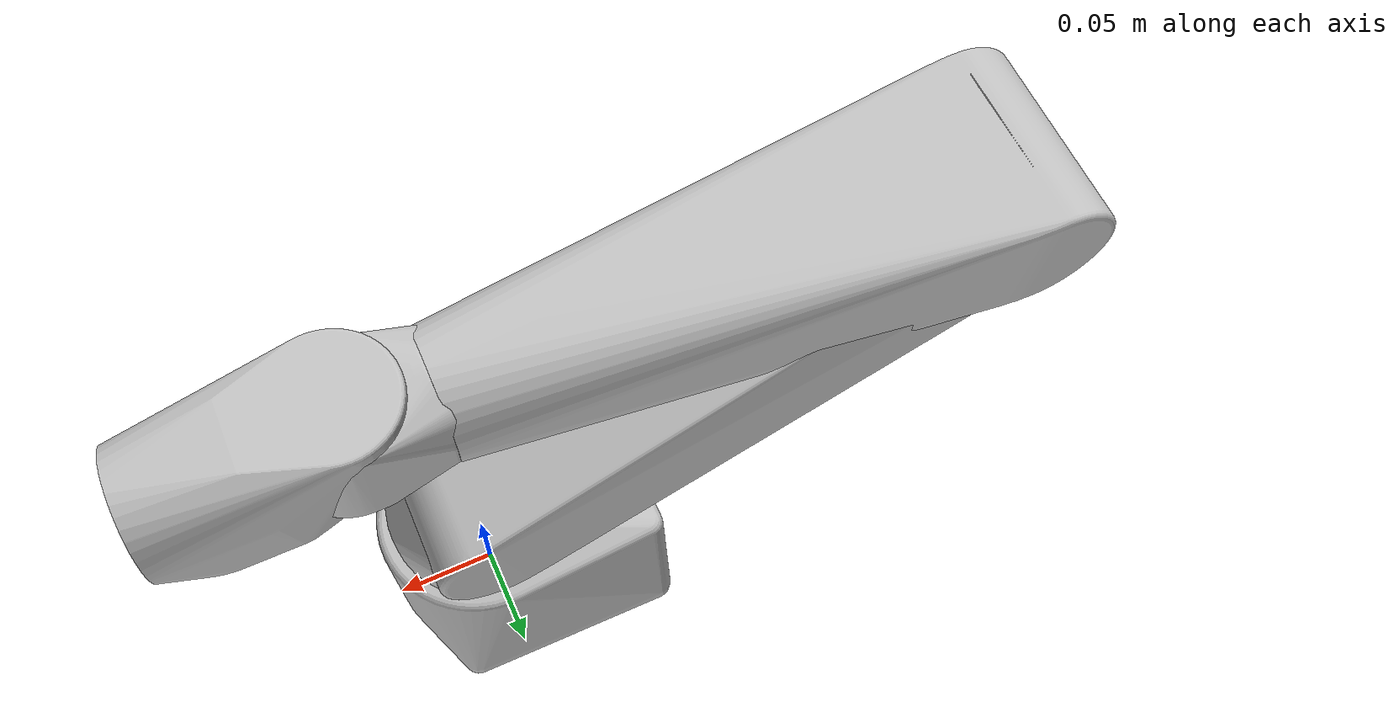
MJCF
<mujoco model="airbot">
  <include file="airbot_config.xml"/>
  <worldbody>
    <geom type="mesh" contype="0" conaffinity="0" group="1" density="0" rgba="0.75294 0.75294 0.75294 1" mesh="base_link"/>
    <body name="link1" pos="0 0 0.1117">
      <inertial pos="5.65823e-05 -0.00254686 -0.0260161" quat="0.425246 0.565393 0.444998 0.549067" mass="0.609" diaginertia="0.000363812 0.000296936 0.000260542"/>
      <joint name="joint1" pos="0 0 0" axis="0 0 1" range="-3.151 2.089" actuatorfrcrange="-12 12"/>
      <geom type="mesh" rgba="0.75294 0.75294 0.75294 1" mesh="link1"/>
      <body name="link2" quat="0.136004 0.135754 -0.693387 0.69447">
        <inertial pos="0.150315 0.00717305 0.00160325" quat="-0.0035835 0.712028 0.029484 0.701523" mass="0.902" diaginertia="0.00338951 0.00317972 0.000396151"/>
        <joint name="joint2" pos="0 0 0" axis="0 0 1" range="-2.963 0.181" actuatorfrcrange="-12 12"/>
        <geom type="mesh" rgba="0.75294 0.75294 0.75294 1" mesh="link2"/>
        <body name="link3" pos="0.27009 0 0" quat="0.55806 -0.000659484 0.000443518 0.8298">
          <inertial pos="2.8745e-05 0.110064 0.00426641" quat="0.536553 0.458503 -0.460051 0.538739" mass="0.683" diaginertia="0.00112874 0.0011117 0.000205631"/>
          <joint name="joint3" pos="0 0 0" axis="0 0 1" range="-0.094 3.161" actuatorfrcrange="-12 12"/>
          <geom type="mesh" rgba="0.75294 0.75294 0.75294 1" mesh="link3"/>
          <body name="link4" pos="8.2128e-05 0.29015 0" quat="0.499998 -0.5 -0.5 -0.500002">
            <inertial pos="-4.38752e-05 0.000502807 -0.020529" quat="0.57802 0.407764 0.553627 0.439452" mass="0.358" diaginertia="0.000140287 0.000111206 0.000110237"/>
            <joint name="joint4" pos="0 0 0" axis="0 0 1" range="-3.012 3.012" actuatorfrcrange="-3 3"/>
            <geom type="mesh" rgba="0.75294 0.75294 0.75294 1" mesh="link4"/>
            <body name="link5" quat="0.707105 0.707108 0 0">
              <inertial pos="0.000107256 0.0376096 0.000942839" quat="0.657602 0.251011 -0.249099 0.665209" mass="0.403" diaginertia="0.00016511 0.000143238 0.000137102"/>
              <joint name="joint5" pos="0 0 0" axis="0 0 1" range="-1.859 1.859" actuatorfrcrange="-3 3"/>
              <geom type="mesh" rgba="0.75294 0.75294 0.75294 1" mesh="link5"/>
              <body name="link6" pos="0 0.0864 0" quat="0.707105 0 0 0.707108">
                <inertial pos="-0.022 0 0" quat="0.952272 -0.305251 1.20982e-05 -3.77751e-05" mass="0.118" diaginertia="2.3175e-05 1.29801e-05 1.29739e-05"/>
                <joint name="joint6" pos="0 0 0" axis="1 0 0" range="-3.017 3.017" actuatorfrcrange="-3 3"/>
                <geom type="mesh" rgba="0.75294 0.75294 0.75294 1" mesh="link6"/>
              </body>
            </body>
          </body>
        </body>
      </body>
    </body>
  </worldbody>

  <actuator>
    <position name="joint1_position" ctrllimited="true" ctrlrange="-3.14 2.09"  joint="joint1" kp="15.0" user="1" forcelimited="true" forcerange="-20 20"/>
    <position name="joint2_position" ctrllimited="true" ctrlrange="-2.96 0.17"  joint="joint2" kp="15.0" user="1" forcelimited="true" forcerange="-20 20"/>
    <position name="joint3_position" ctrllimited="true" ctrlrange="-0.087 3.14" joint="joint3" kp="15.0" user="1" forcelimited="true" forcerange="-20 20"/>
    <position name="joint4_position" ctrllimited="true" ctrlrange="-2.96 2.96"  joint="joint4" kp="2.5"  user="1" forcelimited="true" forcerange="-8 8"/>
    <position name="joint5_position" ctrllimited="true" ctrlrange="-1.74 1.74"  joint="joint5" kp="2.5"  user="1" forcelimited="true" forcerange="-8 8"/>
    <position name="joint6_position" ctrllimited="true" ctrlrange="-3.14 3.14"  joint="joint6" kp="2.5"  user="1" forcelimited="true" forcerange="-8 8"/>

    <velocity name="joint1_velocity" ctrllimited="true" ctrlrange="-6.283 6.283" joint="joint1" kv="0.15"  user="1" forcelimited="true" forcerange="-20 20"/>
    <velocity name="joint2_velocity" ctrllimited="true" ctrlrange="-6.283 6.283" joint="joint2" kv="0.175" user="1" forcelimited="true" forcerange="-20 20"/>
    <velocity name="joint3_velocity" ctrllimited="true" ctrlrange="-6.283 6.283" joint="joint3" kv="0.15"  user="1" forcelimited="true" forcerange="-20 20"/>
    <velocity name="joint4_velocity" ctrllimited="true" ctrlrange="-6.283 6.283" joint="joint4" kv="0.05"  user="1" forcelimited="true" forcerange="-8 8"/>
    <velocity name="joint5_velocity" ctrllimited="true" ctrlrange="-6.283 6.283" joint="joint5" kv="0.15"  user="1" forcelimited="true" forcerange="-8 8"/>
    <velocity name="joint6_velocity" ctrllimited="true" ctrlrange="-6.283 6.283" joint="joint6" kv="0.05"  user="1" forcelimited="true" forcerange="-8 8"/>

    <motor name="joint1_motor" ctrllimited="true" ctrlrange="-20 20" joint="joint1" user="1" forcelimited="true" forcerange="-20 20"/>
    <motor name="joint2_motor" ctrllimited="true" ctrlrange="-20 20" joint="joint2" user="1" forcelimited="true" forcerange="-20 20"/>
    <motor name="joint3_motor" ctrllimited="true" ctrlrange="-20 20" joint="joint3" user="1" forcelimited="true" forcerange="-20 20"/>
    <motor name="joint4_motor" ctrllimited="true" ctrlrange="-8 8"   joint="joint4" user="1" forcelimited="true" forcerange="-8 8"/>
    <motor name="joint5_motor" ctrllimited="true" ctrlrange="-8 8"   joint="joint5" user="1" forcelimited="true" forcerange="-8 8"/>
    <motor name="joint6_motor" ctrllimited="true" ctrlrange="-8 8"   joint="joint6" user="1" forcelimited="true" forcerange="-8 8"/>

  </actuator>

  <sensor>
    <jointpos name="joint1_pos" joint="joint1" />
    <jointpos name="joint2_pos" joint="joint2" />
    <jointpos name="joint3_pos" joint="joint3" />
    <jointpos name="joint4_pos" joint="joint4" />
    <jointpos name="joint5_pos" joint="joint5" />
    <jointpos name="joint6_pos" joint="joint6" />
    <jointvel name="joint1_vel" joint="joint1" />
    <jointvel name="joint2_vel" joint="joint2" />
    <jointvel name="joint3_vel" joint="joint3" />
    <jointvel name="joint4_vel" joint="joint4" />
    <jointvel name="joint5_vel" joint="joint5" />
    <jointvel name="joint6_vel" joint="joint6" />
    <jointactuatorfrc name="joint1_torque" joint="joint1" />
    <jointactuatorfrc name="joint2_torque" joint="joint2" />
    <jointactuatorfrc name="joint3_torque" joint="joint3" />
    <jointactuatorfrc name="joint4_torque" joint="joint4" />
    <jointactuatorfrc name="joint5_torque" joint="joint5" />
    <jointactuatorfrc name="joint6_torque" joint="joint6" />
  </sensor>

</mujoco>

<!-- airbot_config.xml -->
<mujocoinclude>

  <option integrator="RK4" solver="Newton" timestep="0.001"/>
  <compiler angle="radian" inertiafromgeom="auto" inertiagrouprange="4 5" meshdir="../../meshes/hil"/>

  <asset>
    <mesh name="base_link" file="airbot_play_v3_1/collision/base_link.STL"/>
    <mesh name="link1" file="airbot_play_v3_1/collision/link1.STL"/>
    <mesh name="link2" file="airbot_play_v3_1/collision/link2.STL"/>
    <mesh name="link3" file="airbot_play_v3_1/collision/link3.STL"/>
    <mesh name="link4" file="airbot_play_v3_1/collision/link4.STL"/>
    <mesh name="link5" file="airbot_play_v3_1/collision/link5.STL"/>
    <mesh name="link6" file="airbot_play_v3_1/collision/link6.STL"/>

    <mesh name="flange" file="flange/collision/flange.obj"/>
    <mesh name="g2base" file="G2/collision/base_link.STL"/>
    <mesh name="g2link1" file="G2/collision/link1.STL"/>
    <mesh name="g2link2" file="G2/collision/link2.STL"/>
    <mesh name="e2bbase" file="E2B/collision/base_link.STL"/>
    <mesh name="e2blink1" file="E2B/collision/link1.STL"/>
    <mesh name="e2blink2" file="E2B/collision/link2.STL"/>
    <mesh name="e2blink3" file="E2B/collision/link3.STL"/>
  </asset>

</mujocoinclude>
